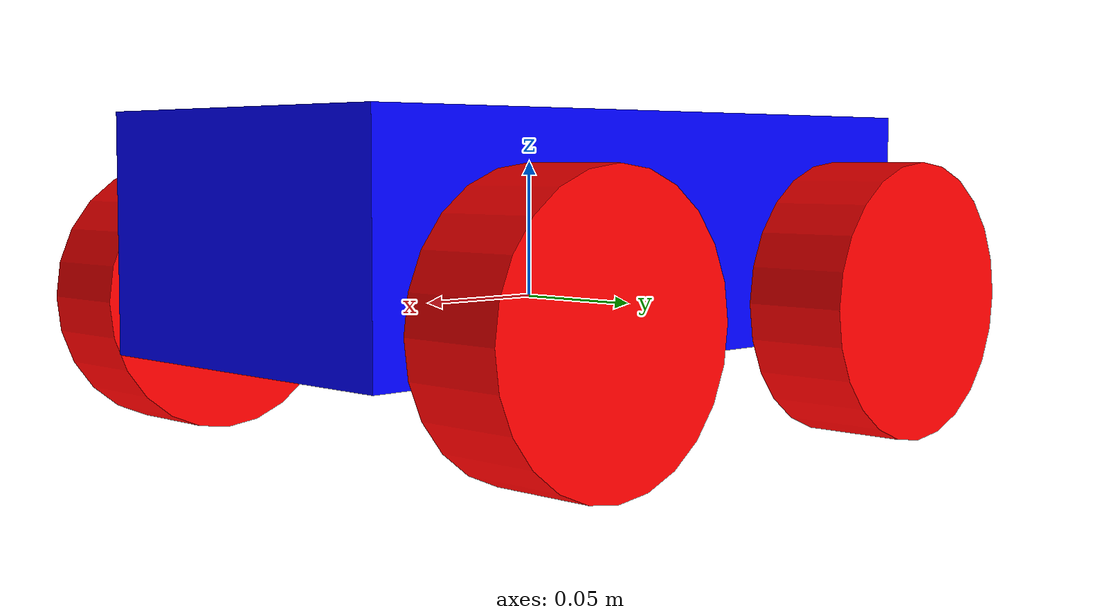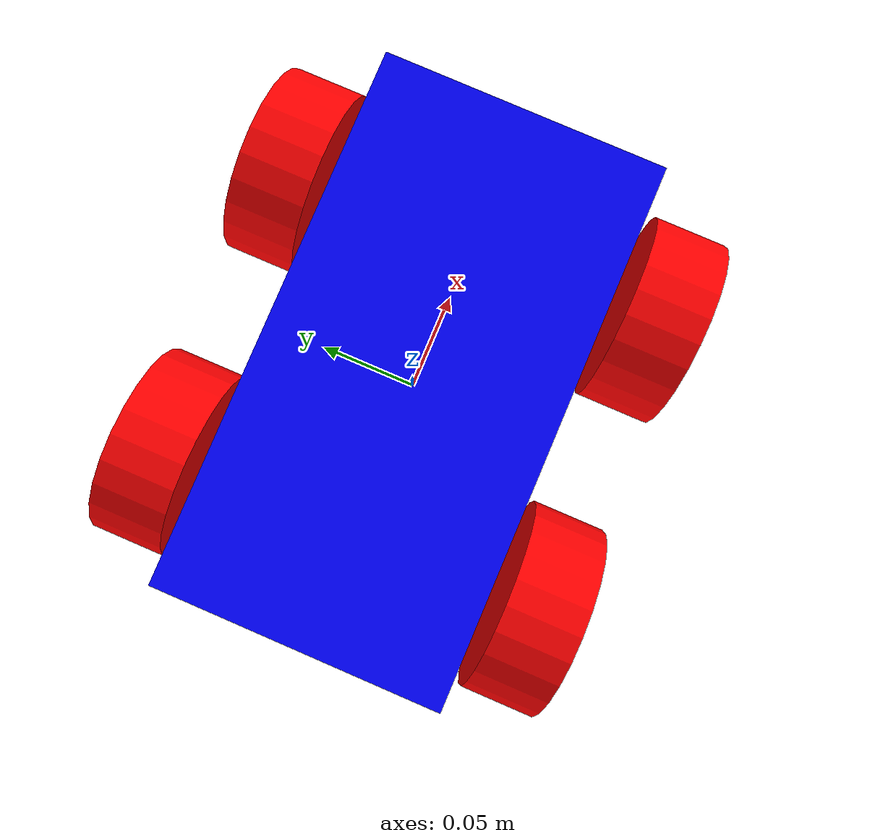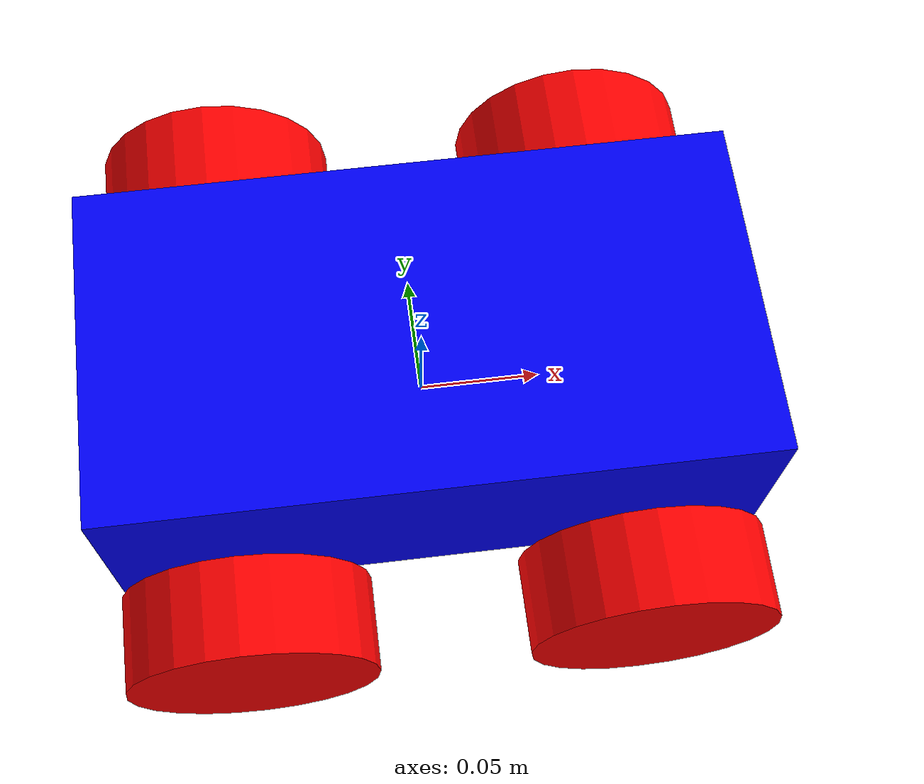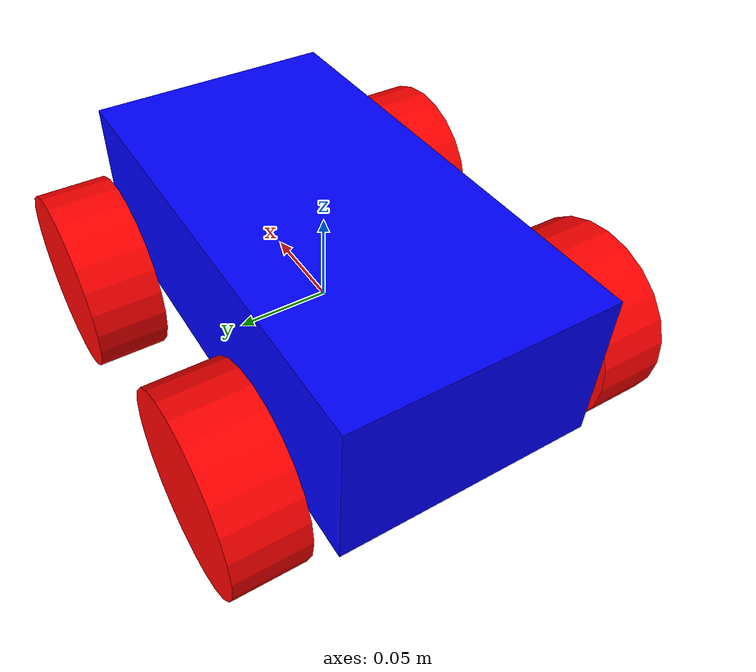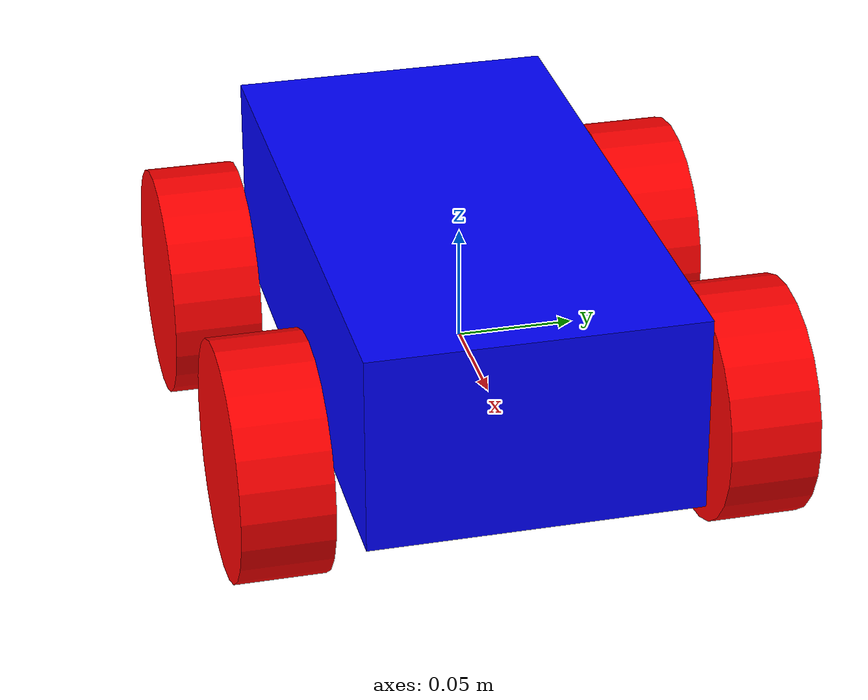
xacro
<?xml version="1.0" encoding="UTF-8"?>
<robot name="mm_robot" xmlns:xacro="http://www.ros.org/wiki/xacro">

  <!-- Robot appearence description -->
  <xacro:include filename="$(find mm_robot_description)/urdf/robot_core.xacro" />

  <!-- Robot simulation description -->
  <xacro:include filename="$(find mm_gps_nav_simulation)/urdf/gazebo.xacro" />

  <!-- Robot ros2_control settings for wheels -->
  <xacro:include filename="$(find mm_gps_nav_simulation)/urdf/ros2_control/wheel.xacro" />

</robot>

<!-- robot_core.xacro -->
<robot xmlns:xacro="http://www.ros.org/wiki/xacro">

  <!-- Inertial macros -->
  <xacro:include filename="$(find mm_robot_description)/urdf/inertial_macros.xacro" />

  <!-- Color definitions -->
  <material name="red">
    <color rgba="1 0 0 1" />
  </material>

  <material name="green">
    <color rgba="0 1 0 1" />
  </material>

  <material name="blue">
    <color rgba="0 0 1 1" />
  </material>

  <material name="black">
    <color rgba="0 0 0 1" />
  </material>

  <link name="base_footprint" />

  <!-- Chassis link -->
  <xacro:include filename="$(find mm_robot_description)/urdf/robot_chassis.xacro" />

  <!-- IMU link -->
  <xacro:include filename="$(find mm_robot_description)/urdf/robot_imu.xacro" />

  <!-- GPS link -->
  <xacro:include filename="$(find mm_robot_description)/urdf/robot_gps.xacro" />

</robot>

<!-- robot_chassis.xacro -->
<robot xmlns:xacro="http://www.ros.org/wiki/xacro">

  <!-- Chassis link -->
  <joint name="base_joint" type="fixed">
    <parent link="base_footprint" />
    <child link="base_link" />
    <origin xyz="0 0 0.025" rpy="0 0 0" />
  </joint>

  <link name="base_link">
    <visual>
      <geometry>
        <box size="0.265 0.14 0.085" />
      </geometry>
      <material name="blue" />
    </visual>
    <collision>
      <geometry>
        <box size="0.265 0.14 0.085" />
      </geometry>
    </collision>
    <xacro:inertial_box mass="1" x="0.265" y="0.14" z="0.085">
      <origin xyz="0.0 0.0 0.0" rpy="0.0 0.0 0.0" />
    </xacro:inertial_box>
  </link>

  <!-- Macro for wheels -->
  <xacro:macro name="wheel" params="name_prefix x y">
    <joint name="${name_prefix}_wheel_joint" type="continuous">
      <parent link="base_link" />
      <child link="${name_prefix}_wheel_link" />
      <origin xyz="${x * 0.08} ${y * 0.10} -0.025" rpy="-${pi/2} -${pi/2} 0.0" />
      <axis xyz="0.0 0.0 1.0" />
    </joint>
    <link name="${name_prefix}_wheel_link">
      <visual>
        <geometry>
          <cylinder radius="0.05" length="0.038" />
        </geometry>
        <material name="red" />
      </visual>
      <collision>
        <geometry>
          <cylinder radius="0.05" length="0.038" />
        </geometry>
      </collision>
      <xacro:inertial_cylinder mass="1" length="0.038" radius="0.05">
        <origin xyz="0.0 0.0 0.0" rpy="0.0 0.0 0.0" />
      </xacro:inertial_cylinder>
    </link>
  </xacro:macro>

  <!-- Left front wheel -->
  <xacro:wheel name_prefix="lf" x="1" y="1" />

  <!-- Right front wheel -->
  <xacro:wheel name_prefix="rf" x="1" y="-1" />

  <!-- Left backend wheel -->
  <xacro:wheel name_prefix="lb" x="-1" y="1" />

  <!-- Right backend wheel -->
  <xacro:wheel name_prefix="rb" x="-1" y="-1" />

</robot>

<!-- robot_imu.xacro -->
<robot xmlns:xacro="http://www.ros.org/wiki/xacro">

  <joint name="imu_joint" type="fixed">
    <parent link="base_link" />
    <child link="imu_link" />
    <origin xyz="0 0 0" rpy="0 0 0" />
  </joint>

  <link name="imu_link">
    <visual>
      <geometry>
        <box size="0.01 0.01 0.01" />
      </geometry>
    </visual>

    <collision>
      <geometry>
        <box size="0.01 0.01 0.01" />
      </geometry>
    </collision>

    <xacro:inertial_box mass="0.01" x="0.01" y="0.01" z="0.01">
      <origin xyz="0.0 0.0 0.0" rpy="0.0 0.0 0.0" />
    </xacro:inertial_box>
  </link>

</robot>

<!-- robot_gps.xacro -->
<robot xmlns:xacro="http://www.ros.org/wiki/xacro">

  <joint name="gps_joint" type="fixed">
    <parent link="base_link" />
    <child link="gps_link" />
    <origin xyz="0 0 0" rpy="0 0 0" />
  </joint>

  <link name="gps_link">
    <visual>
      <geometry>
        <box size="0.01 0.01 0.01" />
      </geometry>
    </visual>

    <collision>
      <geometry>
        <box size="0.01 0.01 0.01" />
      </geometry>
    </collision>

    <xacro:inertial_box mass="0.01" x="0.01" y="0.01" z="0.01">
      <origin xyz="0.0 0.0 0.0" rpy="0.0 0.0 0.0" />
    </xacro:inertial_box>
  </link>

</robot>
